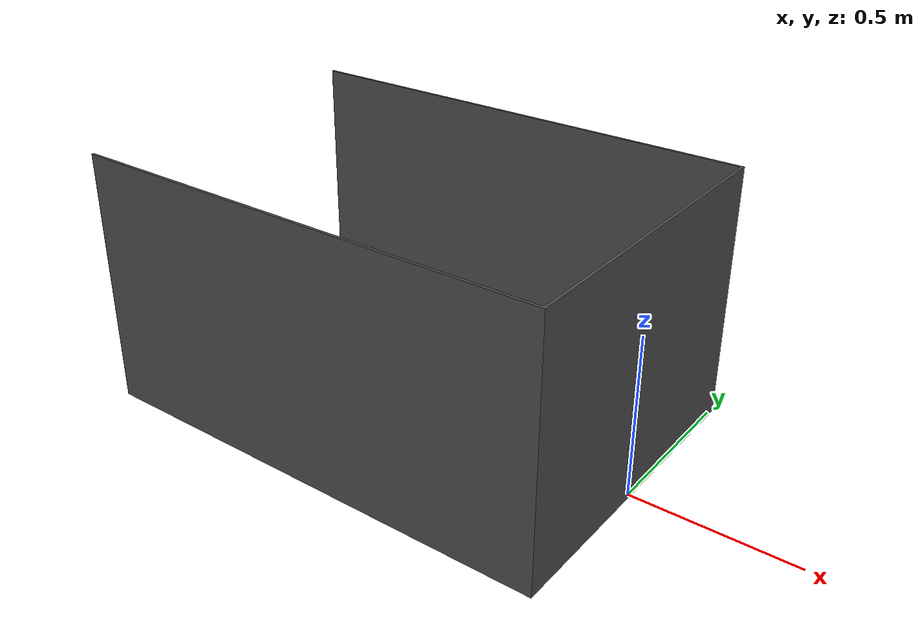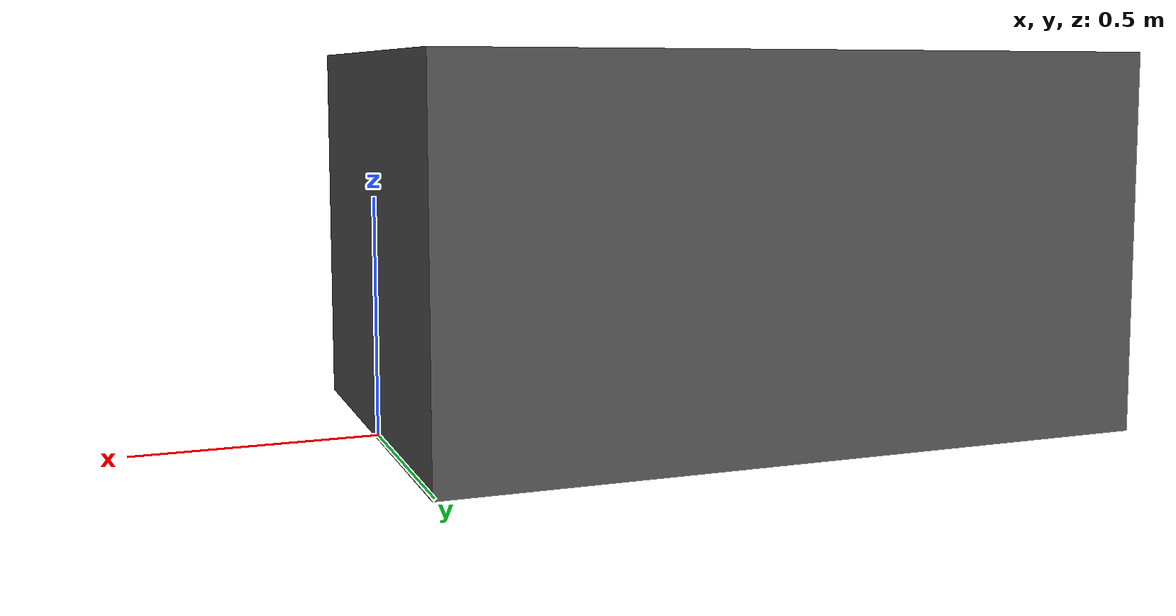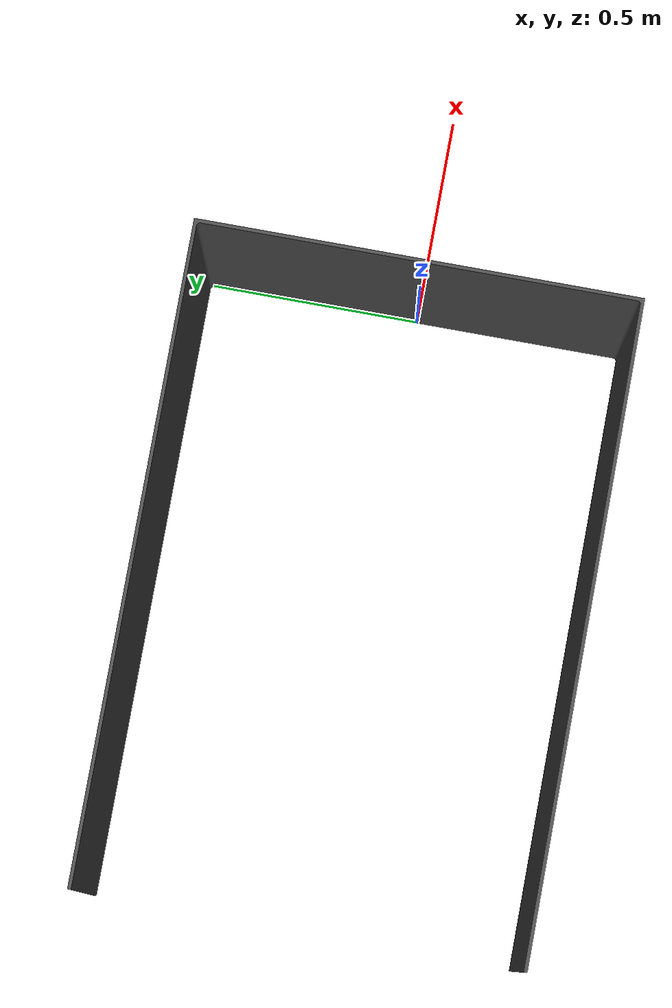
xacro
<?xml version="1.0"?>
<robot name="robot" xmlns:xacro="http://www.ros.org/wiki/xacro">
<xacro:include filename="$(find husky_gazebo)/worlds/materials.urdf.xacro" />
  <link name="base_link">
    <inertial>
      <origin xyz="0 0 0" rpy="0 0 0"/>
      <mass value="1"/>
      <inertia ixx="1" ixy="0" ixz="0" iyy="1" iyz="0" izz="1"/>
    </inertial>
    <visual>
      <origin xyz="0 0 0" rpy="0 0 0"/>
      <geometry>
        <mesh filename="package://husky_gazebo/meshes/House_X4.stl" scale="0.001 0.001 0.001"/>
      </geometry>
    </visual>
    <collision>
      <origin xyz="0 0 0" rpy="0 0 0"/>
      <geometry>
        <mesh filename="package://husky_gazebo/meshes/House_X4.stl" scale="0.001 0.001 0.001"/>
      </geometry>
      <max_contacts>10</max_contacts>
      <surface>
        <contact>
          <ode/>
        </contact>
        <bounce/>
        <friction>
          <torsional>
            <ode/>
          </torsional>
          <ode/>
        </friction>
      </surface>
    </collision>
  </link>
  <gazebo reference="base_link">
    <material>Gazebo/DarkGray</material>
  </gazebo>
  <gazebo> <static>true</static></gazebo>
</robot>
